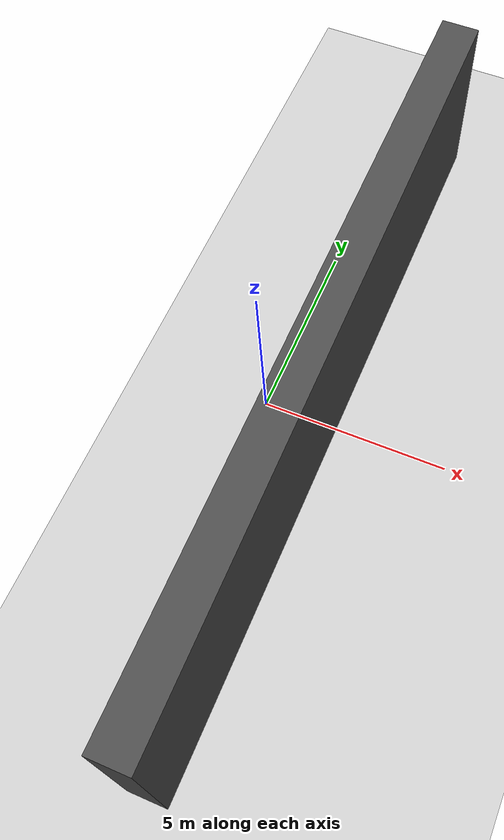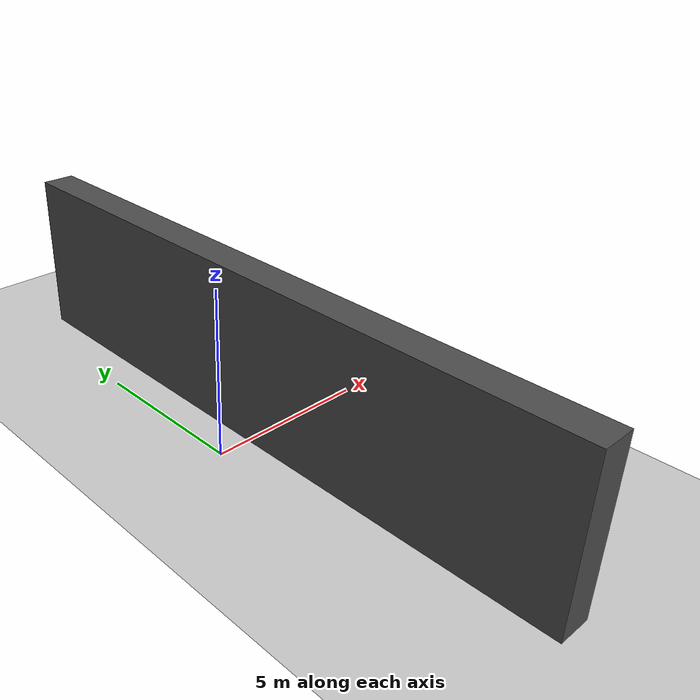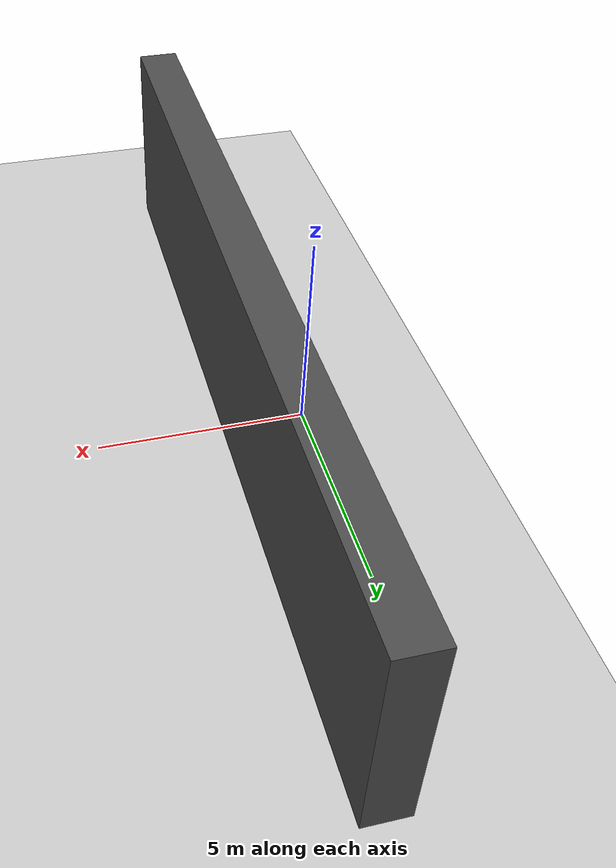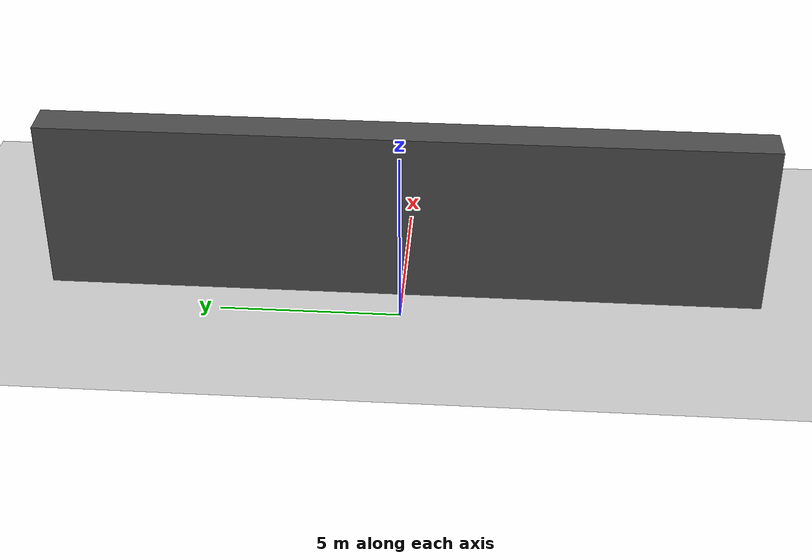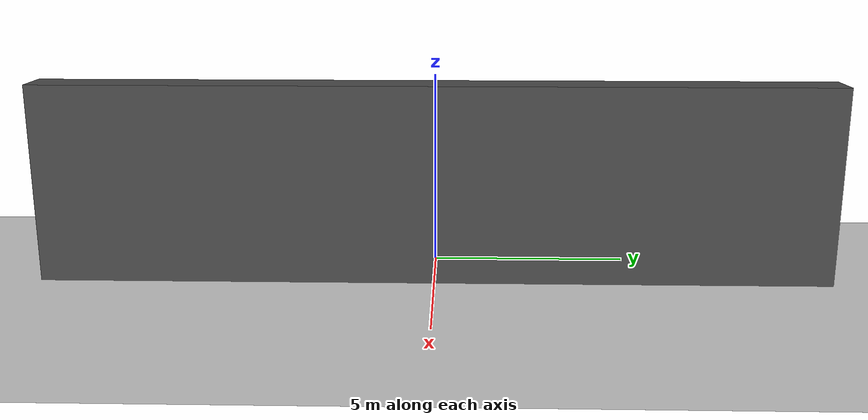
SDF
<sdf version="1.9">
  <world name='moving_boxes'>
    <light name='sun' type='directional'>
      <cast_shadows>1</cast_shadows>
      <pose>0 0 10 0 -0 0</pose>
      <diffuse>0.8 0.8 0.8 1</diffuse>
      <specular>0.2 0.2 0.2 1</specular>
      <attenuation>
        <range>1000</range>
        <constant>0.9</constant>
        <linear>0.01</linear>
        <quadratic>0.001</quadratic>
      </attenuation>
      <direction>-0.5 0.1 -0.9</direction>
    </light>
    <model name='ground_plane'>
      <static>1</static>
      <link name='link'>
        <collision name='collision'>
          <geometry>
            <plane>
              <normal>0 0 1</normal>
              <size>100 100</size>
            </plane>
          </geometry>
          <surface>
            <friction>
              <ode>
                <mu>100</mu>
                <mu2>50</mu2>
              </ode>
              <torsional>
                <ode/>
              </torsional>
            </friction>
            <contact>
              <ode/>
            </contact>
            <bounce/>
          </surface>
        </collision>
        <visual name='visual'>
          <cast_shadows>0</cast_shadows>
          <geometry>
            <plane>
              <normal>0 0 1</normal>
              <size>100 100</size>
            </plane>
          </geometry>
          <material>
            <ambient>0.5 0.5 0.5 1</ambient>
            <diffuse>0.8 0.8 0.8 1</diffuse>
            <specular>0.2 0.2 0.2 1</specular>
          </material>
        </visual>
      </link>
    </model>
    <gravity>0 0 -9.8</gravity>
    <magnetic_field>6e-06 2.3e-05 -4.2e-05</magnetic_field>
    <atmosphere type='adiabatic'/>
    <physics type="ode">
      <max_step_size>0.004</max_step_size>
      <real_time_factor>1</real_time_factor>
      <real_time_update_rate>250</real_time_update_rate>
    </physics>
    <scene>
      <ambient>0.4 0.4 0.4 1</ambient>
      <background>0.7 0.7 0.7 1</background>
      <shadows>1</shadows>
    </scene>
    <spherical_coordinates>
      <surface_model>EARTH_WGS84</surface_model>
      <world_frame_orientation>ENU</world_frame_orientation>
      <latitude_deg>0</latitude_deg>
      <longitude_deg>0</longitude_deg>
      <elevation>0</elevation>
    </spherical_coordinates>

     <model name="box">
      <static>true</static>
      <link name='box'>
        <pose>1.5 0 2.5 0 0 0</pose>
        <collision name='collision'>
          <geometry>
            <box>
              <size>1 20 5</size>
            </box>
          </geometry>
        </collision>
        <visual name='visual'>
          <geometry>
            <box>
              <size>1 20 5</size>
            </box>
          </geometry>
          <material>
            <ambient>0.3 0.3 0.3 1</ambient>
            <diffuse>0.3 0.3 0.3 1</diffuse>
            <specular>0.1 0.1 0.1 1</specular>
            <emissive>0 0 0 0</emissive>
          </material>
        </visual>
      </link>
    </model>

  </world>
</sdf>
